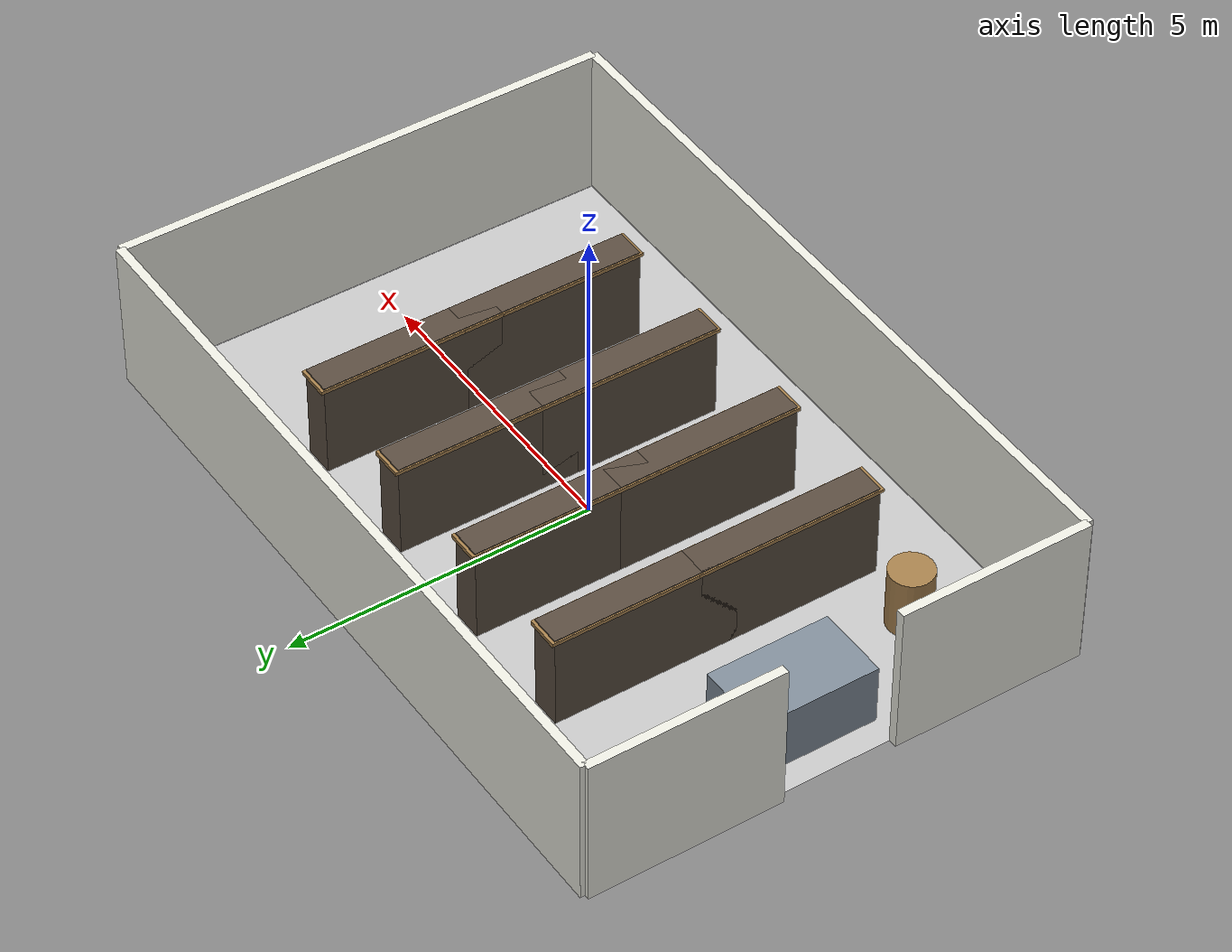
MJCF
<mujoco model="supermarket_world">

  <compiler angle="degree" autolimits="true"/>

  <option timestep="0.005" gravity="0 0 -9.81"/>

  <asset>
    <texture type="skybox" builtin="gradient" rgb1="0.6 0.7 0.9" rgb2="1 1 1" width="256" height="256"/>
    <texture name="floor_tex" type="2d" builtin="checker" rgb1="0.85 0.85 0.85" rgb2="0.7 0.7 0.7"
             width="512" height="512" mark="edge" markrgb="0.3 0.3 0.3"/>
    <material name="floor_mat" texture="floor_tex" texrepeat="12 8" texuniform="true" reflectance="0.05"/>

    <material name="wall_mat" rgba="0.92 0.92 0.88 1"/>
    <material name="shelf_frame_mat" rgba="0.35 0.3 0.25 1"/>
    <material name="shelf_board_mat" rgba="0.65 0.5 0.3 1"/>
    <material name="counter_mat" rgba="0.5 0.55 0.6 1"/>
  </asset>

  <worldbody>
    <light name="top_light" pos="0 0 5" dir="0 0 -1" directional="true" diffuse="0.9 0.9 0.9" specular="0.1 0.1 0.1"/>
    <light name="fill_light" pos="-5 -3 4" dir="0.5 0.3 -1" diffuse="0.4 0.4 0.4"/>

    <!-- Floor -->
    <geom name="floor" type="plane" size="6 4 0.1" pos="0 0 0" material="floor_mat" condim="3"/>

    <!-- ============ Perimeter walls (12m x 8m footprint, 2.5m tall, 0.15m thick) ============ -->
    <geom name="wall_north" type="box" pos="0 4.075 1.25" size="6.075 0.075 1.25" material="wall_mat"/>
    <geom name="wall_south" type="box" pos="0 -4.075 1.25" size="6.075 0.075 1.25" material="wall_mat"/>
    <geom name="wall_east"  type="box" pos="6.075 0 1.25"  size="0.075 4.075 1.25" material="wall_mat"/>
    <!-- West wall has a 2m gap centered on Y=0 for the store entrance -->
    <geom name="wall_west_a" type="box" pos="-6.075 2.5 1.25" size="0.075 1.575 1.25" material="wall_mat"/>
    <geom name="wall_west_b" type="box" pos="-6.075 -2.5 1.25" size="0.075 1.575 1.25" material="wall_mat"/>

    <!-- ============ Shelf aisles ============ -->
    <!-- Each aisle: two parallel shelving units (1.5m long, 0.5m deep, 1.6m tall)
         with a ~1.2m walkway between adjacent aisles. Four aisles spanning X = -3 .. 3. -->
    <body name="aisle_1" pos="-3 0 0">
      <geom name="aisle1_shelf_a" type="box" pos="0 -1.2 0.8" size="0.25 1.5 0.8" material="shelf_frame_mat"/>
      <geom name="aisle1_shelf_a_top" type="box" pos="0 -1.2 1.55" size="0.27 1.55 0.03" material="shelf_board_mat"/>
      <geom name="aisle1_shelf_b" type="box" pos="0 1.2 0.8" size="0.25 1.5 0.8" material="shelf_frame_mat"/>
      <geom name="aisle1_shelf_b_top" type="box" pos="0 1.2 1.55" size="0.27 1.55 0.03" material="shelf_board_mat"/>
    </body>

    <body name="aisle_2" pos="-1 0 0">
      <geom name="aisle2_shelf_a" type="box" pos="0 -1.2 0.8" size="0.25 1.5 0.8" material="shelf_frame_mat"/>
      <geom name="aisle2_shelf_a_top" type="box" pos="0 -1.2 1.55" size="0.27 1.55 0.03" material="shelf_board_mat"/>
      <geom name="aisle2_shelf_b" type="box" pos="0 1.2 0.8" size="0.25 1.5 0.8" material="shelf_frame_mat"/>
      <geom name="aisle2_shelf_b_top" type="box" pos="0 1.2 1.55" size="0.27 1.55 0.03" material="shelf_board_mat"/>
    </body>

    <body name="aisle_3" pos="1 0 0">
      <geom name="aisle3_shelf_a" type="box" pos="0 -1.2 0.8" size="0.25 1.5 0.8" material="shelf_frame_mat"/>
      <geom name="aisle3_shelf_a_top" type="box" pos="0 -1.2 1.55" size="0.27 1.55 0.03" material="shelf_board_mat"/>
      <geom name="aisle3_shelf_b" type="box" pos="0 1.2 0.8" size="0.25 1.5 0.8" material="shelf_frame_mat"/>
      <geom name="aisle3_shelf_b_top" type="box" pos="0 1.2 1.55" size="0.27 1.55 0.03" material="shelf_board_mat"/>
    </body>

    <body name="aisle_4" pos="3 0 0">
      <geom name="aisle4_shelf_a" type="box" pos="0 -1.2 0.8" size="0.25 1.5 0.8" material="shelf_frame_mat"/>
      <geom name="aisle4_shelf_a_top" type="box" pos="0 -1.2 1.55" size="0.27 1.55 0.03" material="shelf_board_mat"/>
      <geom name="aisle4_shelf_b" type="box" pos="0 1.2 0.8" size="0.25 1.5 0.8" material="shelf_frame_mat"/>
      <geom name="aisle4_shelf_b_top" type="box" pos="0 1.2 1.55" size="0.27 1.55 0.03" material="shelf_board_mat"/>
    </body>

    <!-- Checkout counter near the entrance (west side) -->
    <geom name="checkout_counter" type="box" pos="-5 0 0.5" size="0.6 1.0 0.5" material="counter_mat"/>

    <!-- Free-standing end-cap display near entrance, useful as a localized obstacle -->
    <geom name="endcap_display" type="cylinder" pos="-4.3 -2.5 0.5" size="0.35 0.5" material="shelf_board_mat"/>
  </worldbody>
</mujoco>
